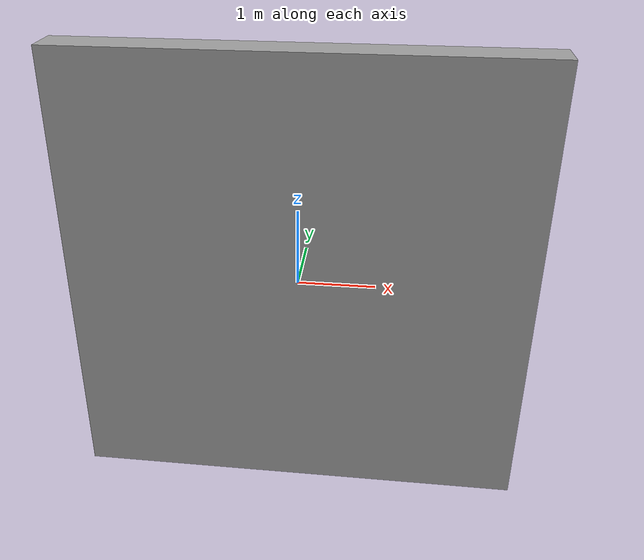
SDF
<?xml version="1.0" ?>
<sdf version="1.5">
  <model name="simple_wall">
    <static>true</static>
    <link name="link">
      <collision name="collision">
        <geometry>
          <box>
            <size>6 2.0 6</size>
          </box>
        </geometry>
        <surface>
          <contact>
             <collide_bitmask>65535</collide_bitmask>
          </contact>
          <friction>
            <ode>
              <mu>100</mu>
              <mu2>50</mu2>
            </ode>
          </friction>
        </surface>
      </collision>
      <visual name="visual">
        <cast_shadows>false</cast_shadows>
        <geometry>
          <box>
            <size>6 0.5 6</size>
          </box>
        </geometry>
        <material>
          <script>
            <uri>file://media/materials/scripts/gazebo.material</uri>
            <name>Gazebo/Grey</name>
          </script>
        </material>
      </visual>
    </link>
  </model>
</sdf>
